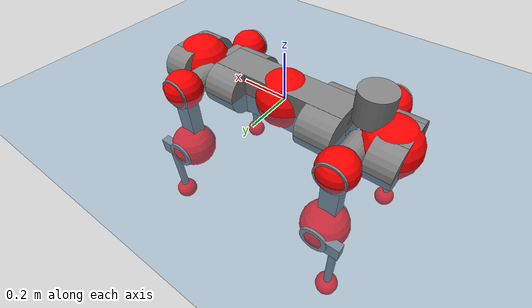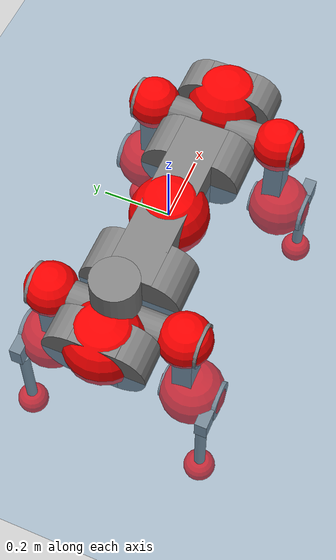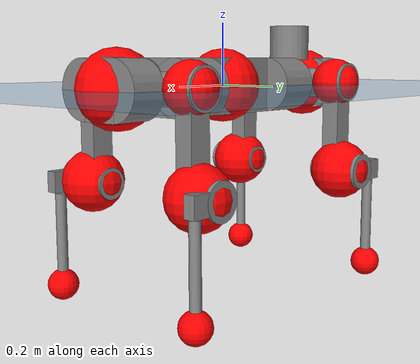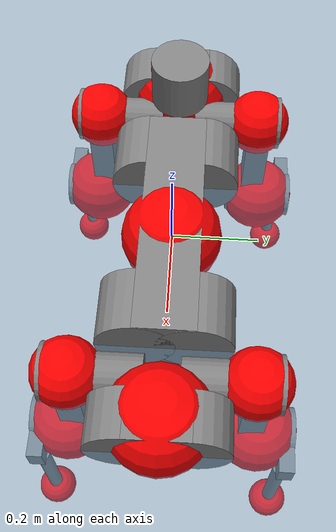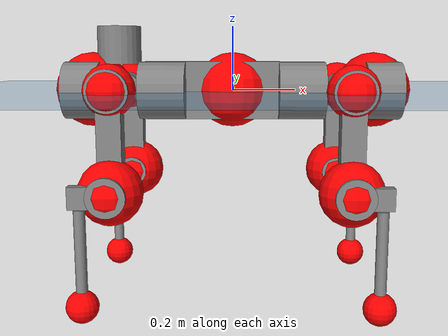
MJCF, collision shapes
<mujoco model="anymal_c">
  <compiler angle="radian" assetdir="assets" balanceinertia="true" inertiafromgeom="false"/>

  <option timestep="0.005" density="1.2" viscosity="2e-05"/>

  <size nkey="1"/>

  <visual>
    <quality shadowsize="8192"/>
    <map shadowclip="0.5"/>
  </visual>

  <default>
    <default class="/">
      <material specular="0" shininess="0.25"/>
      <geom contype="0" conaffinity="0" group="1" solref="-1000 -80"/>
      <site size="0.01 0.005 0.005" group="5"/>
      <general forcelimited="true" forcerange="-80 80" biastype="affine" gainprm="80" biasprm="0 -80 -2"/>
      <default class="anymal_c">
        <joint armature="0.01" damping="0.01" frictionloss="0.1"/>
        <default class="visual">
          <geom type="mesh" group="2"/>
          <default class="visual_zflip"/>
        </default>
        <default class="collision">
          <geom type="cylinder" group="3"/>
          <default class="foot">
            <geom size="0.03 0 0" type="sphere" condim="6" priority="1" friction="0.8 0.02 0.01" solimp="0.015 1 0.03"/>
          </default>
        </default>
      </default>
      <default class="reward_collision_sphere">
        <geom group="5" rgba="1 0 0 1"/>
      </default>
    </default>
  </default>

  <asset>
    <texture type="skybox" colorspace="auto" name="//unnamed_texture_0" builtin="gradient" rgb1="0.95 0.95 0.95" rgb2="0.95 0.95 0.95" width="100" height="600"/>
    <texture type="2d" colorspace="auto" name="texplane" builtin="checker" rgb1="0.345 0.575 0.748" rgb2="0.345 0.575 0.748" markrgb="1 1 1" width="512" height="512"/>
    <texture type="2d" colorspace="linear" name="base" file="base.png"/>
    <texture type="2d" colorspace="linear" name="top_shell" file="top_shell.png"/>
    <texture type="2d" colorspace="linear" name="bottom_shell" file="bottom_shell.png"/>
    <texture type="2d" colorspace="linear" name="remote" file="remote.png"/>
    <texture type="2d" colorspace="linear" name="hatch" file="hatch.png"/>
    <texture type="2d" colorspace="linear" name="handle" file="handle.png"/>
    <texture type="2d" colorspace="linear" name="face" file="face.png"/>
    <texture type="2d" colorspace="linear" name="battery" file="battery.png"/>
    <texture type="2d" colorspace="linear" name="lidar_cage" file="lidar_cage.png"/>
    <texture type="2d" colorspace="linear" name="depth_camera" file="depth_camera.png"/>
    <texture type="2d" colorspace="linear" name="wide_angle_camera" file="wide_angle_camera.png"/>
    <texture type="2d" colorspace="linear" name="lidar" file="lidar.png"/>
    <texture type="2d" colorspace="linear" name="drive" file="drive.png"/>
    <texture type="2d" colorspace="linear" name="hip_l" file="hip_l.png"/>
    <texture type="2d" colorspace="linear" name="shank_l" file="shank_l.png"/>
    <texture type="2d" colorspace="linear" name="foot" file="foot.png"/>
    <texture type="2d" colorspace="linear" name="thigh" file="thigh.png"/>
    <texture type="2d" colorspace="linear" name="shank_r" file="shank_r.png"/>
    <texture type="2d" colorspace="linear" name="hip_r" file="hip_r.png"/>
    <material name="MatPlane" class="/" texture="texplane" texuniform="true" texrepeat="2 2" specular="0.9" shininess="0.5"/>
    <material name="black_plastic" class="/" rgba="0.007 0.007 0.007 1"/>
    <material name="green" class="/" rgba="0.052 0.178 0.033 1"/>
    <material name="red" class="/" rgba="0.178 0.006 0.005 1"/>
    <material name="yellow" class="/" rgba="0.178 0.119 0.006 1"/>
    <material name="lwl" class="/" rgba="0.8 0.8 0.8 1"/>
    <material name="base" class="/" texture="base"/>
    <material name="top_shell" class="/" texture="top_shell"/>
    <material name="bottom_shell" class="/" texture="bottom_shell"/>
    <material name="hip_l" class="/" texture="hip_l"/>
    <material name="thigh" class="/" texture="thigh"/>
    <material name="shank_l" class="/" texture="shank_l"/>
    <material name="foot" class="/" texture="foot"/>
    <material name="hip_r" class="/" texture="hip_r"/>
    <material name="shank" class="/" texture="shank_r"/>
    <material name="hatch" class="/" texture="hatch"/>
    <material name="remote" class="/" texture="remote"/>
    <material name="handle" class="/" texture="handle"/>
    <material name="face" class="/" texture="face"/>
    <material name="depth_camera" class="/" texture="depth_camera"/>
    <material name="wide_angle_camera" class="/" texture="wide_angle_camera"/>
    <material name="battery" class="/" texture="battery"/>
    <material name="lidar_cage" class="/" texture="lidar_cage"/>
    <material name="lidar" class="/" texture="lidar"/>
    <material name="drive" class="/" texture="drive"/>
    <mesh name="base_0" class="/" file="base_0.obj"/>
    <mesh name="base_1" class="/" file="base_1.obj"/>
    <mesh name="base_2" class="/" file="base_2.obj"/>
    <mesh name="base_3" class="/" file="base_3.obj"/>
    <mesh name="base_4" class="/" file="base_4.obj"/>
    <mesh name="base_5" class="/" file="base_5.obj"/>
    <mesh name="top_shell" class="/" file="top_shell.obj"/>
    <mesh name="bottom_shell" class="/" file="bottom_shell.obj"/>
    <mesh name="remote" class="/" file="remote.obj"/>
    <mesh name="handle" class="/" file="handle.obj"/>
    <mesh name="face" class="/" file="face.obj"/>
    <mesh name="wide_angle_camera" class="/" file="wide_angle_camera.obj"/>
    <mesh name="depth_camera" class="/" file="depth_camera.obj"/>
    <mesh name="battery" class="/" file="battery.obj"/>
    <mesh name="lidar_cage" class="/" file="lidar_cage.obj"/>
    <mesh name="lidar" class="/" file="lidar.obj"/>
    <mesh name="drive" class="/" file="drive.obj"/>
    <mesh name="hip_l" class="/" file="hip_l.obj"/>
    <mesh name="thigh" class="/" file="thigh.obj"/>
    <mesh name="shank_l" class="/" file="shank_l.obj"/>
    <mesh name="foot" class="/" file="foot.obj"/>
    <mesh name="hip_r" class="/" file="hip_r.obj"/>
    <mesh name="hatch" class="/" file="hatch.obj"/>
    <mesh name="shank_r" class="/" file="shank_r.obj"/>
  </asset>

  <worldbody>
    <geom name="floor" class="/" size="100 100 0.125" type="plane" group="0" material="MatPlane"/>
    <light name="toplight_shadow" class="/" pos="0 0 5" dir="0.0990148 0.0990148 -0.990148" type="directional" ambient="0.04 0.04 0.04" diffuse="0.55 0.55 0.55" specular="0.12 0.12 0.12"/>
    <light name="toplight_fill" class="/" pos="0 0 5" dir="0.0990148 0.0990148 -0.990148" type="directional" castshadow="false" ambient="0.04 0.04 0.04" diffuse="0.3 0.3 0.3" specular="0.08 0.08 0.08"/>
    <body name="trunk" childclass="anymal_c" pos="0.000173588 -0.000900032 0.00104849" quat="1 9.66549e-05 0.000362528 0.000277068">
      <inertial pos="0.00198116 -0.00262967 0.0521637" quat="0.499524 0.50023 0.499627 0.500619" mass="18.0378" diaginertia="0.578412 0.38911 0.274057"/>
      <joint name="//unnamed_joint_0" type="free" armature="0" damping="0" frictionloss="0"/>
      <geom name="//unnamed_geom_1" class="visual" material="green" mesh="base_0"/>
      <geom name="//unnamed_geom_2" class="visual" material="yellow" mesh="base_1"/>
      <geom name="//unnamed_geom_3" class="visual" material="red" mesh="base_2"/>
      <geom name="//unnamed_geom_4" class="visual" material="black_plastic" mesh="base_3"/>
      <geom name="//unnamed_geom_5" class="visual" material="lwl" mesh="base_4"/>
      <geom name="//unnamed_geom_6" class="visual" material="base" mesh="base_5"/>
      <geom name="trunk_1" class="collision" size="0.286118 0.069063 0.0887953" type="box"/>
      <geom name="trunk_2" class="collision" size="0.0887953 0.0715296" pos="0.215972 0.0641916 0" quat="0.707107 0 0.707107 0"/>
      <geom name="trunk_3" class="collision" size="0.0887953 0.0715296" pos="-0.215972 0.0641916 0" quat="0.707107 0 0.707107 0"/>
      <geom name="trunk_4" class="collision" size="0.0887953 0.0715296" pos="0.215972 -0.0641916 0" quat="0.707107 0 0.707107 0"/>
      <geom name="trunk_5" class="collision" size="0.0887953 0.0715296" pos="-0.215972 -0.0641916 0" quat="0.707107 0 0.707107 0"/>
      <geom name="//unnamed_geom_12" class="visual" material="top_shell" mesh="top_shell"/>
      <geom name="//unnamed_geom_13" class="visual" material="bottom_shell" mesh="bottom_shell"/>
      <geom name="//unnamed_geom_14" class="visual" material="remote" mesh="remote"/>
      <geom name="//unnamed_geom_15" class="visual" material="handle" mesh="handle"/>
      <geom name="//unnamed_geom_16" class="visual" pos="0.411587 0 0" quat="1 0 0 0" material="face" mesh="face"/>
      <geom name="trunk_6" class="collision" size="0.0542638 0.069063 0.0887953" pos="0.466201 0 0" type="box"/>
      <geom name="//unnamed_geom_18" class="collision" size="0.0887953 0.0542638" pos="0.466201 0.0641916 0" quat="0.707107 0 0.707107 0"/>
      <geom name="//unnamed_geom_19" class="collision" size="0.0887953 0.0542638" pos="0.466201 -0.0641916 0" quat="0.707107 0 0.707107 0"/>
      <geom name="//unnamed_geom_20" class="visual" pos="0.458408 0 -0.0310878" quat="0.965926 0 0.258819 0" material="depth_camera" mesh="depth_camera"/>
      <geom name="//unnamed_geom_21" class="visual" pos="0.509395 0 0.0157162" material="wide_angle_camera" mesh="wide_angle_camera"/>
      <geom name="//unnamed_geom_22" class="visual_zflip" pos="-0.411587 0 0" quat="0 0 0 1" material="face" mesh="face"/>
      <geom name="trunk_7" class="collision" size="0.0542638 0.069063 0.0887953" pos="-0.466201 0 0" quat="0 0 0 1" type="box"/>
      <geom name="//unnamed_geom_24" class="collision" size="0.0887953 0.0542638" pos="-0.466201 -0.0641916 0" quat="0 -0.707107 0 0.707107"/>
      <geom name="//unnamed_geom_25" class="collision" size="0.0887953 0.0542638" pos="-0.466201 0.0641916 0" quat="0 -0.707107 0 0.707107"/>
      <geom name="//unnamed_geom_26" class="visual" pos="-0.458408 0 -0.0310878" quat="0 -0.258819 0 0.965926" material="depth_camera" mesh="depth_camera"/>
      <geom name="//unnamed_geom_27" class="visual_zflip" pos="-0.509395 0 0.0157162" quat="0 0 0 1" material="wide_angle_camera" mesh="wide_angle_camera"/>
      <geom name="//unnamed_geom_28" class="visual" material="battery" mesh="battery"/>
      <geom name="//unnamed_geom_29" class="visual" pos="0 0.0691213 0.0300658" quat="0.683013 -0.183013 0.183013 0.683013" material="depth_camera" mesh="depth_camera"/>
      <geom name="//unnamed_geom_30" class="visual" pos="0 -0.0691213 0.0300658" quat="0.683013 0.183013 0.183013 -0.683013" material="depth_camera" mesh="depth_camera"/>
      <geom name="//unnamed_geom_31" class="visual" pos="-0.361442 0 0.0771638" quat="1 0 0 0" material="lidar_cage" mesh="lidar_cage"/>
      <geom name="trunk_8" class="collision" size="0.069063 0.0591969" pos="-0.361442 0 0.140155"/>
      <geom name="//unnamed_geom_33" class="visual" pos="-0.361442 -2.98387e-05 0.149288" quat="0.707107 0 0 -0.707107" material="lidar" mesh="lidar"/>
      <geom name="//unnamed_geom_34" class="visual" pos="0.297792 0.0954175 -2.29126e-09" quat="0.258819 0.965926 0 0" material="drive" mesh="drive"/>
      <geom name="//unnamed_geom_35" class="visual" pos="0.297792 -0.0954175 2.29126e-09" quat="0.258819 -0.965926 0 0" material="drive" mesh="drive"/>
      <geom name="//unnamed_geom_36" class="visual" pos="-0.297792 0.0954175 2.29126e-09" quat="0 0 0.965926 -0.258819" material="drive" mesh="drive"/>
      <geom name="//unnamed_geom_37" class="visual" pos="-0.297792 -0.0954175 -2.29126e-09" quat="0 0 -0.965926 -0.258819" material="drive" mesh="drive"/>
      <geom name="//unnamed_geom_38" class="visual" pos="0.115185 0 0.0766389" quat="1 0 0 0" material="hatch" mesh="hatch"/>
      <geom name="//unnamed_geom_39" class="reward_collision_sphere" size="0.118394"/>
      <geom name="//unnamed_geom_40" class="reward_collision_sphere" size="0.118394" pos="0.446838 0 0"/>
      <geom name="//unnamed_geom_41" class="reward_collision_sphere" size="0.118394" pos="-0.446838 0 0"/>
      <site name="imu" pos="0.245367 0.0103992 0.0513171" size="0.00986614"/>
      <camera name="track" pos="0 -1.83405 0" quat="0.707107 0.707107 0 0" mode="trackcom"/>
      <camera name="ego_camera" pos="0.446838 0 -0.0419939" quat="-0.5 -0.5 0.5 0.5"/>
      <body name="LF_HIP" pos="0.298412 0.0954382 -0.000319175" quat="0.259049 0.965864 -0.000179235 -0.000119435">
        <inertial pos="0.0562516 -0.0155208 -0.00865537" quat="-0.118326 0.706295 -0.13035 0.685678" mass="2.64966" diaginertia="0.00556248 0.00317744 0.00413174"/>
        <joint name="LF_HAA" pos="0 0 0" axis="0.999998 -0.00174398 -0.000737241" range="-0.71648 0.502574" armature="0.00950048" damping="0.0130218" frictionloss="0.100288"/>
        <geom name="//unnamed_geom_42" class="visual" pos="0 -0.000134784 2.21382e-05" quat="0.258819 -0.965926 0 0" material="hip_l" mesh="hip_l"/>
        <geom name="//unnamed_geom_43" class="visual" pos="0.0594791 -0.0711187 -0.0420429" quat="0.183013 -0.683013 0.683013 0.183013" material="drive" mesh="drive"/>
        <geom name="//unnamed_geom_44" class="collision" size="0.0493307 0.069063" pos="0.0594791 -0.0109674 -0.0072492" quat="-0.353553 -0.612372 0.612372 -0.353553"/>
        <body name="LF_THIGH" pos="0.0617115 -0.067199 -0.0455319" quat="0.184047 -0.682988 0.682948 0.182307">
          <inertial pos="0.0310243 0.0026845 -0.257514" quat="0.993538 -0.00400268 -0.0798581 0.0805579" mass="2.93414" diaginertia="0.0282719 0.0199163 0.00531335"/>
          <joint name="LF_HFE" pos="0 0 0" axis="0.999977 -0.00659252 0.00147035" range="-3.16629 3.08981" armature="0.0111481" damping="0.00732857" frictionloss="0.0980309"/>
          <geom name="//unnamed_geom_45" class="visual" pos="0.0015111 2.38115e-06 0" quat="0.707107 0 0 -0.707107" material="thigh" mesh="thigh"/>
          <geom name="//unnamed_geom_46" class="collision" size="0.0641299 0.0394646" pos="0.0397189 0 0" quat="0.5 0.5 -0.5 -0.5"/>
          <geom name="//unnamed_geom_47" class="collision" size="0.036998 0.0295984 0.139422" pos="0.0297892 0 -0.148358" quat="0.707107 0 0 -0.707107" type="box"/>
          <geom name="//unnamed_geom_48" class="visual" pos="0.0995951 0 -0.299207" quat="1 0 0 0" material="drive" mesh="drive"/>
          <geom name="//unnamed_geom_49" class="collision" size="0.0493307 0.069063" pos="0.0300871 0 -0.299207" quat="0.707107 0 0.707107 0"/>
          <geom name="//unnamed_geom_50" class="reward_collision_sphere" size="0.0789292" pos="0.0248243 0 0"/>
          <body name="LF_SHANK" pos="0.0996123 -0.000400053 -0.298034" quat="1 -0.000111678 -0.000230211 4.34482e-05">
            <inertial pos="0.00317755 -0.0567013 -0.0865234" quat="0.993128 -0.113285 -0.00161259 -0.0293444" mass="0.553562" diaginertia="0.00973155 0.00612127 0.00140992"/>
            <joint name="LF_KFE" pos="0 0 0" axis="0.999996 0.000837799 -0.0025658" range="-3.08808 3.17304" armature="0.0098307" damping="0" frictionloss="0.0935875"/>
            <geom name="//unnamed_geom_51" class="visual" pos="0.000492738 0.00262731 0" quat="0.707107 0 0 -0.707107" material="shank_l" mesh="shank_l"/>
            <geom name="LF_kfe_act" class="collision" size="0.0591969 0.0197323" pos="0.0198595 0 0" quat="0.5 0.5 -0.5 -0.5"/>
            <geom name="//unnamed_geom_53" class="collision" size="0.0567293 0.0332982 0.0187457" pos="0.0198595 -0.0527279 0" quat="0.5 0.5 -0.5 -0.5" type="box"/>
            <geom name="//unnamed_geom_54" class="visual" pos="0.0129582 -0.0798055 -0.354817" quat="0.382683 0 0 -0.92388" material="foot" mesh="foot"/>
            <geom name="LF_calf" class="collision" size="0.0172658 0.139361" pos="0.0129583 -0.0806521 -0.177409" quat="0.707107 0 0 -0.707107"/>
            <geom name="LF_foot" class="foot" size="0.030639" pos="0.0129583 -0.0806521 -0.331196" quat="0.707107 0 0 -0.707107"/>
            <geom name="//unnamed_geom_57" class="reward_collision_sphere" size="0.0986614" pos="-0.0496486 0 0"/>
            <geom name="//unnamed_geom_58" class="reward_collision_sphere" size="0.0493307" pos="0.0129583 -0.0806521 -0.331196"/>
            <site name="LF_foot" class="foot" pos="0.0129583 -0.0806521 -0.331196" quat="0.707107 0 0 -0.707107" size="0.00986614"/>
          </body>
        </body>
      </body>
      <body name="RF_HIP" pos="0.29572 -0.0953495 -0.0024973" quat="0.258396 -0.966039 -0.00018709 0.000218601">
        <inertial pos="0.0564015 0.013648 -0.00832352" quat="0.139144 0.683783 0.13518 0.703424" mass="2.69609" diaginertia="0.00556674 0.00318616 0.0041404"/>
        <joint name="RF_HAA" pos="0 0 0" axis="0.999995 -0.00254764 -0.00163959" range="-0.483506 0.765309" armature="0.0101368" damping="0.012971" frictionloss="0.093483"/>
        <geom name="//unnamed_geom_59" class="visual" pos="0 0.000134783 2.21381e-05" quat="0.258819 0.965926 0 0" material="hip_r" mesh="hip_r"/>
        <geom name="//unnamed_geom_60" class="visual" pos="0.0594791 0.0711187 -0.0420429" quat="0.183013 0.683013 0.683013 -0.183013" material="drive" mesh="drive"/>
        <geom name="//unnamed_geom_61" class="collision" size="0.0493307 0.069063" pos="0.0594791 0.0109674 -0.0072492" quat="-0.353553 0.612372 0.612372 0.353553"/>
        <body name="RF_THIGH" pos="0.0605536 0.0684977 -0.0464992" quat="0.183068 0.682899 0.683151 -0.182865">
          <inertial pos="0.0305519 -0.000875875 -0.255255" quat="0.992423 -0.00562733 -0.085401 0.088153" mass="2.90191" diaginertia="0.02879 0.0193094 0.00531629"/>
          <joint name="RF_HFE" pos="0 0 0" axis="0.999994 0.00325517 0.00133782" stiffness="0.0149665" range="-3.14332 3.1198" armature="0.00883268" damping="0.0209854" frictionloss="0.0958593"/>
          <geom name="//unnamed_geom_62" class="visual" pos="0.0015111 2.38115e-06 0" quat="0.707107 0 0 -0.707107" material="thigh" mesh="thigh"/>
          <geom name="//unnamed_geom_63" class="collision" size="0.0641299 0.0394646" pos="0.0397189 0 0" quat="0.5 0.5 0.5 0.5"/>
          <geom name="//unnamed_geom_64" class="collision" size="0.036998 0.0295984 0.139422" pos="0.0297892 0 -0.148358" quat="0.707107 0 0 0.707107" type="box"/>
          <geom name="//unnamed_geom_65" class="visual" pos="0.0995951 0 -0.299207" quat="1 0 0 0" material="drive" mesh="drive"/>
          <geom name="//unnamed_geom_66" class="collision" size="0.0493307 0.069063" pos="0.0300871 0 -0.299207" quat="0.707107 0 0.707107 0"/>
          <geom name="//unnamed_geom_67" class="reward_collision_sphere" size="0.0789292" pos="0.0248243 0 0"/>
          <body name="RF_SHANK" pos="0.1009 -0.000471959 -0.297064" quat="1 0.000240676 -0.00025954 0.000181069">
            <inertial pos="0.00512574 0.0570594 -0.0840373" quat="0.993037 0.115654 0.000519518 0.0223929" mass="0.583553" diaginertia="0.0102349 0.00627442 0.00146515"/>
            <joint name="RF_KFE" pos="0 0 0" axis="0.999996 0.00138921 -0.0022941" range="-3.1517 3.11667" armature="0.0100118" damping="0" frictionloss="0.103181"/>
            <geom name="//unnamed_geom_68" class="visual" pos="0.000492736 -0.0026273 0" quat="0.707107 0 0 0.707107" material="shank" mesh="shank_r"/>
            <geom name="RF_kfe_act" class="collision" size="0.0591969 0.0197323" pos="0.0198595 0 0" quat="0.5 0.5 0.5 0.5"/>
            <geom name="//unnamed_geom_70" class="collision" size="0.0567293 0.0332982 0.0187457" pos="0.0198595 0.0527279 0" quat="0.5 0.5 0.5 0.5" type="box"/>
            <geom name="//unnamed_geom_71" class="visual" pos="0.0129584 0.0798055 -0.354817" quat="0.382683 0 0 0.92388" material="foot" mesh="foot"/>
            <geom name="RF_calf" class="collision" size="0.0172658 0.139361" pos="0.0129583 0.0806521 -0.177409" quat="0.707107 0 0 0.707107"/>
            <geom name="RF_foot" class="foot" size="0.0266105" pos="0.0129583 0.0806521 -0.331196" quat="0.707107 0 0 0.707107"/>
            <geom name="//unnamed_geom_74" class="reward_collision_sphere" size="0.0986614" pos="-0.0496486 0 0"/>
            <geom name="//unnamed_geom_75" class="reward_collision_sphere" size="0.0493307" pos="0.0129583 0.0806521 -0.331196"/>
            <site name="RF_foot" class="foot" pos="0.0129583 0.0806521 -0.331196" quat="0.707107 0 0 0.707107" size="0.00986614"/>
          </body>
        </body>
      </body>
      <body name="LH_HIP" pos="-0.29735 0.0956278 0.00144677" quat="-0.000346884 0.00022215 0.965887 -0.258965">
        <inertial pos="0.0557211 0.0147796 -0.00832216" quat="0.137799 0.681497 0.128016 0.707238" mass="2.60994" diaginertia="0.0057613 0.00323337 0.00425089"/>
        <joint name="LH_HAA" pos="0 0 0" axis="0.999985 -0.00500928 0.00224534" stiffness="0.00146806" range="-0.455095 0.742617" armature="0.0102739" damping="0.00924063" frictionloss="0.106436"/>
        <geom name="//unnamed_geom_76" class="visual" pos="0 0.000134783 2.21381e-05" quat="-0.258819 -0.965926 0 0" material="hip_r" mesh="hip_r"/>
        <geom name="//unnamed_geom_77" class="visual" pos="0.0594791 0.0711187 -0.0420429" quat="0.183013 0.683013 0.683013 -0.183013" material="drive" mesh="drive"/>
        <geom name="//unnamed_geom_78" class="collision" size="0.0493307 0.069063" pos="0.0594791 0.0109674 -0.0072492" quat="-0.353553 0.612372 0.612372 0.353553"/>
        <body name="LH_THIGH" pos="0.0589756 0.0677274 -0.0436291" quat="0.18397 0.683531 0.682413 -0.182352">
          <inertial pos="0.0310598 0.00253805 -0.258753" quat="0.991972 -0.00878488 -0.0866819 0.0916545" mass="2.85663" diaginertia="0.0291931 0.0194522 0.00548886"/>
          <joint name="LH_HFE" pos="0 0 0" axis="0.999914 -0.00327901 0.012724" stiffness="0.00205357" range="-3.14067 3.12993" armature="0.0102597" damping="0.0167619" frictionloss="0.0978473"/>
          <geom name="//unnamed_geom_79" class="visual" pos="0.0015111 2.38115e-06 0" quat="0.707107 0 0 -0.707107" material="thigh" mesh="thigh"/>
          <geom name="//unnamed_geom_80" class="collision" size="0.0641299 0.0394646" pos="0.0397189 0 0" quat="0.5 0.5 -0.5 -0.5"/>
          <geom name="//unnamed_geom_81" class="collision" size="0.036998 0.0295984 0.139422" pos="0.0297892 0 -0.148358" quat="0.707107 0 0 -0.707107" type="box"/>
          <geom name="//unnamed_geom_82" class="visual" pos="0.0995951 0 -0.299207" quat="1 0 0 0" material="drive" mesh="drive"/>
          <geom name="//unnamed_geom_83" class="collision" size="0.0493307 0.069063" pos="0.0300871 0 -0.299207" quat="0.707107 0 0.707107 0"/>
          <geom name="//unnamed_geom_84" class="reward_collision_sphere" size="0.0789292" pos="0.0248243 0 0"/>
          <body name="LH_SHANK" pos="0.100202 -0.00115837 -0.299229" quat="1 -0.000280093 -8.40524e-05 -5.41434e-05">
            <inertial pos="0.00514121 0.0579066 -0.08509" quat="0.992787 0.116864 -0.00339435 0.0265448" mass="0.569977" diaginertia="0.00961878 0.00586412 0.00139236"/>
            <joint name="LH_KFE" pos="0 0 0" axis="0.999997 -0.00104335 0.00217621" stiffness="0.00373301" range="-3.09305 3.13639" armature="0.0111509" damping="0.0145347" frictionloss="0.0951149"/>
            <geom name="//unnamed_geom_85" class="visual" pos="0.000492736 -0.0026273 0" quat="-0.707107 0 0 -0.707107" material="shank" mesh="shank_r"/>
            <geom name="LH_kfe_act" class="collision" size="0.0591969 0.0197323" pos="0.0198595 0 0" quat="0.5 0.5 -0.5 -0.5"/>
            <geom name="//unnamed_geom_87" class="collision" size="0.0567293 0.0332982 0.0187457" pos="0.0198595 0.0527279 0" quat="0.5 0.5 -0.5 -0.5" type="box"/>
            <geom name="//unnamed_geom_88" class="visual" pos="0.0129584 0.0798055 -0.354817" quat="-0.382683 0 0 -0.92388" material="foot" mesh="foot"/>
            <geom name="LH_calf" class="collision" size="0.0172658 0.139361" pos="0.0129583 0.0806521 -0.177409" quat="0.707107 0 0 -0.707107"/>
            <geom name="LH_foot" class="foot" size="0.0301319" pos="0.0129583 0.0806521 -0.331196" quat="0.707107 0 0 -0.707107"/>
            <geom name="//unnamed_geom_91" class="reward_collision_sphere" size="0.0986614" pos="-0.0496486 0 0"/>
            <geom name="//unnamed_geom_92" class="reward_collision_sphere" size="0.0493307" pos="0.0129583 0.0806521 -0.331196"/>
            <site name="LH_foot" class="foot" pos="0.0129583 0.0806521 -0.331196" quat="0.707107 0 0 -0.707107" size="0.00986614"/>
          </body>
        </body>
      </body>
      <body name="RH_HIP" pos="-0.300276 -0.0966251 0.000313867" quat="-0.00142493 0.000218037 -0.965949 -0.25873">
        <inertial pos="0.0568039 -0.0131007 -0.00862319" quat="-0.127838 0.708715 -0.135762 0.680404" mass="2.67674" diaginertia="0.00567103 0.00315603 0.004345"/>
        <joint name="RH_HAA" pos="0 0 0" axis="0.999994 0.00344856 -0.000607859" stiffness="0.00108901" range="-0.706808 0.514427" armature="0.0110125" damping="0.0100256" frictionloss="0.101247"/>
        <geom name="//unnamed_geom_93" class="visual" pos="0 -0.000134784 2.21382e-05" quat="-0.258819 0.965926 0 0" material="hip_l" mesh="hip_l"/>
        <geom name="//unnamed_geom_94" class="visual" pos="0.0594791 -0.0711187 -0.0420429" quat="-0.183013 0.683013 -0.683013 -0.183013" material="drive" mesh="drive"/>
        <geom name="//unnamed_geom_95" class="collision" size="0.0493307 0.069063" pos="0.0594791 -0.0109674 -0.0072492" quat="0.353553 0.612372 -0.612372 0.353553"/>
        <body name="RH_THIGH" pos="0.0583944 -0.0648286 -0.0439781" quat="-0.182955 0.683176 -0.68277 -0.183368">
          <inertial pos="0.0304849 -0.00156013 -0.258304" quat="0.993165 -0.00624226 -0.080179 0.0845901" mass="2.87696" diaginertia="0.0287802 0.0194165 0.00522255"/>
          <joint name="RH_HFE" pos="0 0 0" axis="0.999994 -0.00154373 -0.00314948" stiffness="0.00393601" range="-3.12894 3.19507" armature="0.00861634" damping="0.0174553" frictionloss="0.0960302"/>
          <geom name="//unnamed_geom_96" class="visual" pos="0.0015111 2.38115e-06 0" quat="0.707107 0 0 -0.707107" material="thigh" mesh="thigh"/>
          <geom name="//unnamed_geom_97" class="collision" size="0.0641299 0.0394646" pos="0.0397189 0 0" quat="0.5 0.5 0.5 0.5"/>
          <geom name="//unnamed_geom_98" class="collision" size="0.036998 0.0295984 0.139422" pos="0.0297892 0 -0.148358" quat="0.707107 0 0 0.707107" type="box"/>
          <geom name="//unnamed_geom_99" class="visual" pos="0.0995951 0 -0.299207" quat="1 0 0 0" material="drive" mesh="drive"/>
          <geom name="//unnamed_geom_100" class="collision" size="0.0493307 0.069063" pos="0.0300871 0 -0.299207" quat="0.707107 0 0.707107 0"/>
          <geom name="//unnamed_geom_101" class="reward_collision_sphere" size="0.0789292" pos="0.0248243 0 0"/>
          <body name="RH_SHANK" pos="0.0995238 2.5725e-05 -0.299299" quat="1 -1.27654e-05 3.65356e-05 -0.000217082">
            <inertial pos="0.00534271 -0.056611 -0.0844006" quat="0.992925 -0.115987 -0.00171255 -0.025391" mass="0.572805" diaginertia="0.00970682 0.00598407 0.00142423"/>
            <joint name="RH_KFE" pos="0 0 0" axis="1 -0.000139455 -0.000774181" range="-3.07944 3.12889" armature="0.00963354" damping="0.0126667" frictionloss="0.0991352"/>
            <geom name="//unnamed_geom_102" class="visual" pos="0.000492738 0.00262731 0" quat="0.707107 0 0 -0.707107" material="shank_l" mesh="shank_l"/>
            <geom name="RH_kfe_act" class="collision" size="0.0591969 0.0197323" pos="0.0198595 0 0" quat="0.5 0.5 0.5 0.5"/>
            <geom name="//unnamed_geom_104" class="collision" size="0.0567293 0.0332982 0.0187457" pos="0.0198595 -0.0527279 0" quat="0.5 0.5 0.5 0.5" type="box"/>
            <geom name="//unnamed_geom_105" class="visual" pos="0.0129582 -0.0798055 -0.354817" quat="0.382683 0 0 -0.92388" material="foot" mesh="foot"/>
            <geom name="RH_calf" class="collision" size="0.0172658 0.139361" pos="0.0129583 -0.0806521 -0.177409" quat="0.707107 0 0 0.707107"/>
            <geom name="RH_foot" class="foot" size="0.0303898" pos="0.0129583 -0.0806521 -0.331196" quat="0.707107 0 0 0.707107"/>
            <geom name="//unnamed_geom_108" class="reward_collision_sphere" size="0.0986614" pos="-0.0496486 0 0"/>
            <geom name="//unnamed_geom_109" class="reward_collision_sphere" size="0.0493307" pos="0.0129583 -0.0806521 -0.331196"/>
            <site name="RH_foot" class="foot" pos="0.0129583 -0.0806521 -0.331196" quat="0.707107 0 0 0.707107" size="0.00986614"/>
          </body>
        </body>
      </body>
    </body>
  </worldbody>

  <contact>
    <pair class="/" geom1="floor" geom2="LF_foot" name="//unnamed_contact_0"/>
    <pair class="/" geom1="floor" geom2="RF_foot" name="//unnamed_contact_1"/>
    <pair class="/" geom1="floor" geom2="LH_foot" name="//unnamed_contact_2"/>
    <pair class="/" geom1="floor" geom2="RH_foot" name="//unnamed_contact_3"/>
  </contact>

  <actuator>
    <general name="LF_HAA" class="/" joint="LF_HAA" forcerange="-79.4555 79.4555" gainprm="79.8099" biasprm="0 -79.8099 -1.92293"/>
    <general name="LF_HFE" class="/" joint="LF_HFE" forcerange="-78.7791 78.7791" gainprm="79.8099" biasprm="0 -79.8099 -1.92293"/>
    <general name="LF_KFE" class="/" joint="LF_KFE" forcerange="-80.509 80.509" gainprm="79.8099" biasprm="0 -79.8099 -1.92293"/>
    <general name="RF_HAA" class="/" joint="RF_HAA" forcerange="-80.49 80.49" gainprm="79.8099" biasprm="0 -79.8099 -1.92293"/>
    <general name="RF_HFE" class="/" joint="RF_HFE" forcerange="-80.9581 80.9581" gainprm="79.8099" biasprm="0 -79.8099 -1.92293"/>
    <general name="RF_KFE" class="/" joint="RF_KFE" forcerange="-75.1751 75.1751" gainprm="79.8099" biasprm="0 -79.8099 -1.92293"/>
    <general name="LH_HAA" class="/" joint="LH_HAA" forcerange="-82.3871 82.3871" gainprm="79.8099" biasprm="0 -79.8099 -1.92293"/>
    <general name="LH_HFE" class="/" joint="LH_HFE" forcerange="-79.0601 79.0601" gainprm="79.8099" biasprm="0 -79.8099 -1.92293"/>
    <general name="LH_KFE" class="/" joint="LH_KFE" forcerange="-76.6238 76.6238" gainprm="79.8099" biasprm="0 -79.8099 -1.92293"/>
    <general name="RH_HAA" class="/" joint="RH_HAA" forcerange="-80.9369 80.9369" gainprm="79.8099" biasprm="0 -79.8099 -1.92293"/>
    <general name="RH_HFE" class="/" joint="RH_HFE" forcerange="-76.7406 76.7406" gainprm="79.8099" biasprm="0 -79.8099 -1.92293"/>
    <general name="RH_KFE" class="/" joint="RH_KFE" forcerange="-85.98 85.98" gainprm="79.8099" biasprm="0 -79.8099 -1.92293"/>
  </actuator>

  <sensor>
    <gyro site="imu" name="imu_angular_velocity"/>
    <velocimeter site="imu" name="imu_linear_velocity"/>
    <framelinvel objtype="site" objname="LF_foot" name="LF_foot_global_linear_velocity"/>
    <framelinvel objtype="site" objname="RF_foot" name="RF_foot_global_linear_velocity"/>
    <framelinvel objtype="site" objname="LH_foot" name="LH_foot_global_linear_velocity"/>
    <framelinvel objtype="site" objname="RH_foot" name="RH_foot_global_linear_velocity"/>
  </sensor>

  <keyframe>
    <key name="home" qpos="0 0 0.55 1 0 0 0 0 0.4 -0.8 0 -0.4 0.8 0 -0.4 0.8 0 0.4 -0.8"/>
  </keyframe>
</mujoco>
